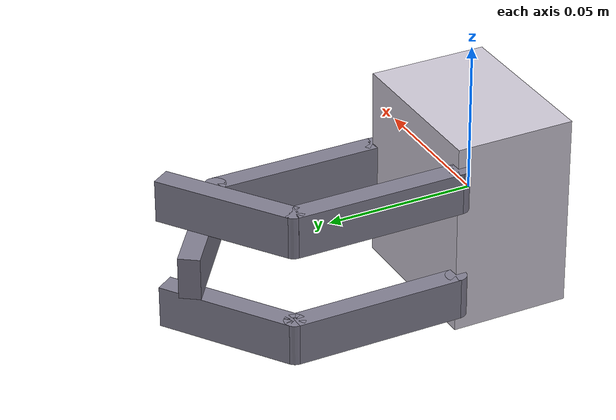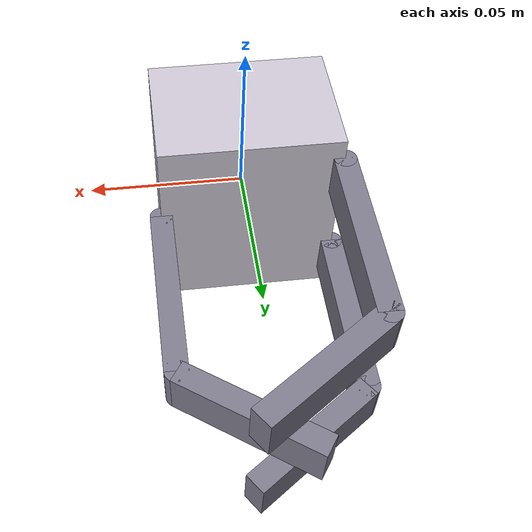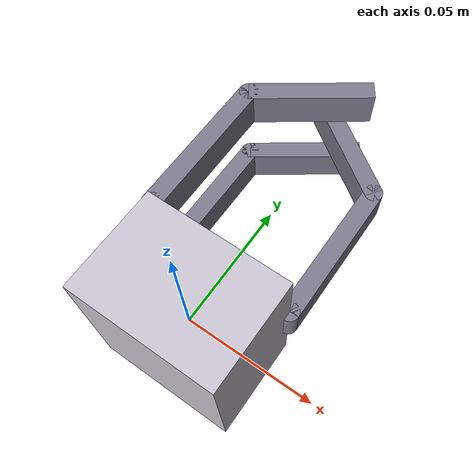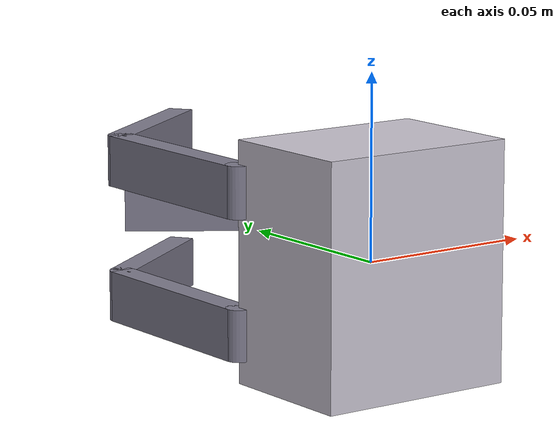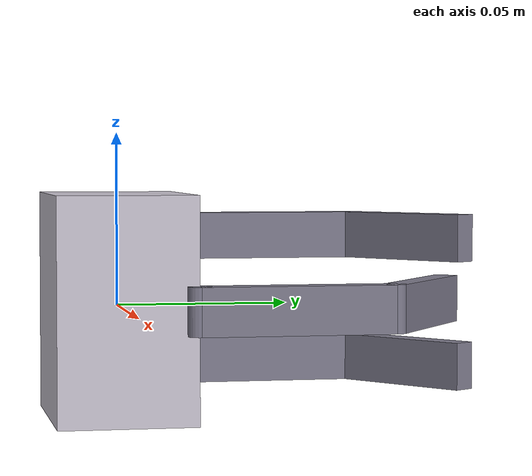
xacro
<?xml version="1.0"?>
<robot xmlns:xacro="http://www.ros.org/wiki/xacro" name="gripper">
  <!-- Command to run:
  rosrun xacro xacro.py gripper.xacro > gripper.urdf; roslaunch urdf_tutorial display.launch model:=gripper.urdf gui:=True
  -->

  <!-- Materials -->
  <xacro:macro name="material_metal">
  <material name="Metal">
    <color rgba="0.8 0.78 0.83 1.0" />
  </material>
  </xacro:macro>
  <xacro:macro name="material_darkmetal">
  <material name="Darkmetal">
    <color rgba="0.5 0.49 0.56 1.0" />
  </material>
  </xacro:macro>

  <!-- Variables -->
  <xacro:property name="base_finger_length" value="0.056" />
  <xacro:property name="top_finger_length" value="0.046" />
  <xacro:property name="base_finger_min" value="-0.785" />
  <xacro:property name="base_finger_max" value="0.087" />
  <xacro:property name="top_finger_min" value="1.431" />
  <xacro:property name="top_finger_max" value="0.489" />

  <!-- Finger macro -->
  <xacro:macro name="finger" params="name base x y z roll pitch yaw">
  <link name="${name}_finger_base">
    <visual>
      <origin xyz="0 ${base_finger_length/2} 0" rpy="0 0 0" />
      <geometry>
	<box size="0.007 ${base_finger_length} 0.014" rpy="0 0 0" />
      </geometry>
      <xacro:material_darkmetal />
    </visual>
    <visual>
      <origin xyz="0 0 0" rpy="0 0 0" />
      <geometry>
	<cylinder length="0.014" radius="0.0035" />
      </geometry>
      <xacro:material_darkmetal />
    </visual>
  </link>
  <link name="${name}_finger_top">
    <visual>
      <origin xyz="0 ${top_finger_length/2} 0" rpy="0 0 0" />
      <geometry>
        <box size="0.007 ${top_finger_length} 0.014" />
      </geometry>
      <xacro:material_darkmetal />
    </visual>
    <visual>
      <origin xyz="0 0 0" rpy="0 0 0" />
      <geometry>
	<cylinder length="0.014" radius="0.0035" />
      </geometry>
      <xacro:material_darkmetal />
    </visual>
  </link>
  <joint name="${name}_finger_basejoint" type="revolute">
    <parent link="${base}" />
    <child link="${name}_finger_base" />
    <origin xyz="${x} ${y} ${z}" rpy="${roll} ${pitch} ${yaw}" />
    <limit effort="1000.0" lower="${base_finger_min}" upper="${base_finger_max}" velocity="0.5"/>
    <axis xyz="0 0 1" />
  </joint>
  <joint name="${name}_finger_topjoint" type="revolute">
    <parent link="${name}_finger_base" />
    <child link="${name}_finger_top" />
    <axis xyz="0 0 1" />
    <origin xyz="0 ${base_finger_length} 0" rpy="0 0 0" />
    <limit effort="1000.0" lower="${top_finger_min}" upper="${top_finger_max}" velocity="0.5"/>
  </joint>
  </xacro:macro>

  <link name="base_link">
    <visual>
      <geometry>
        <box size="0.056 0.040 0.065" rpy="0 0 0" />
      </geometry>
      <xacro:material_metal />
    </visual>
  </link>

  <!-- Create 3 fingers -->
  <xacro:finger name="f1" base="base_link" x="0.028" y="0.020" z="0" roll="0" pitch="0" yaw="0" />
  <xacro:finger name="f2" base="base_link" x="-0.028" y="0.020" z="0.019" roll="0" pitch="3.14" yaw="0" />
  <xacro:finger name="f3" base="base_link" x="-0.028" y="0.020" z="-0.019" roll="0" pitch="3.14" yaw="0" />

</robot>
